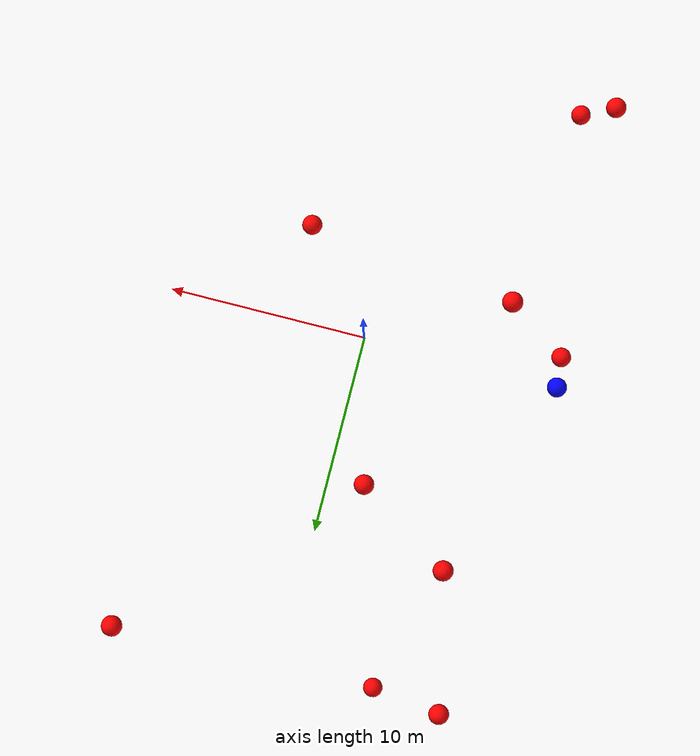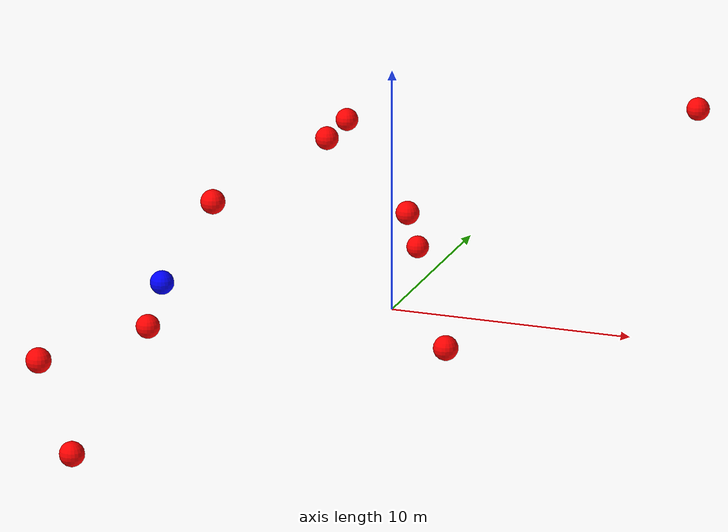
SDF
<?xml version="1.0" ?>
<sdf version="1.8">
    <world name="3d_world">
        <physics name="1ms" type="ode">
            <max_step_size>0.001</max_step_size>
            <real_time_factor>1.0</real_time_factor>
            <real_time_update_rate>1000.0</real_time_update_rate>
        </physics>
        <gravity>0 0 0</gravity>

        <plugin
            filename="gz-sim-physics-system"
            name="gz::sim::v8::systems::Physics">
        </plugin>
        <plugin
            filename="libignition-gazebo-user-commands-system.so"
            name="ignition::gazebo::systems::UserCommands">
        </plugin>
        <plugin
            filename="gz-sim-scene-broadcaster-system"
            name="gz::sim::systems::SceneBroadcaster">
        </plugin>
        <plugin
            filename="gz-sim-sensors-system"
            name="gz::sim::systems::Sensors">
            <render_engine>ogre2</render_engine>
        </plugin>

        <light type="directional" name="sun">
            <cast_shadows>true</cast_shadows>
            <pose>0 0 10 0 0 0</pose>
            <diffuse>0.8 0.8 0.8 1</diffuse>
            <specular>0.2 0.2 0.2 1</specular>
            <attenuation>
                <range>1000</range>
                <constant>0.9</constant>
                <linear>0.01</linear>
                <quadratic>0.001</quadratic>
            </attenuation>
            <direction>-0.5 0.1 -0.9</direction>
        </light>

        <!-- AGENTE -->
        <model name='agente' canonical_link='chassis'>
            <pose relative_to='world'>-10.0 0 0.0 0 0 0</pose>
            <link name='chassis'>
                <pose relative_to='__model__'>0.0 0 0.0 0 0 0</pose>
                <inertial>
                    <mass>1.14395</mass>
                    <inertia>
                        <ixx>0.095329</ixx>
                        <ixy>0</ixy>
                        <ixz>0</ixz>
                        <iyy>0.381317</iyy>
                        <iyz>0</iyz>
                        <izz>0.476646</izz>
                    </inertia>
                </inertial>
                <visual name='visual'>
                    <geometry>
                        <sphere>
                            <radius>0.5</radius>
                        </sphere>
                    </geometry>
                    <material>
                        <ambient>0.0 0.0 1.0 1</ambient>
                        <diffuse>0.0 0.0 1.0 1</diffuse>
                        <specular>0.0 0.0 1.0 1</specular>
                    </material>
                </visual>
                <collision name='collision'>
                    <geometry>
                        <sphere>
                            <radius>0.5</radius>
                        </sphere>
                    </geometry>
                </collision>
                <enable_gravity>false</enable_gravity>
            </link>

            <link name='lidar_link'>
                <pose relative_to='chassis'>0.0 0 0.1 0 0 0</pose>
                <inertial>
                    <mass>0.1</mass>
                    <inertia>
                        <ixx>0.000166667</ixx>
                        <iyy>0.000166667</iyy>
                        <izz>0.000166667</izz>
                    </inertia>
                </inertial>
                <collision name='collision'>
                    <geometry>
                        <cylinder>
                            <radius>0.05</radius>
                            <length>0.1</length>
                        </cylinder>
                    </geometry>
                </collision>
                <visual name='visual'>
                    <geometry>
                        <cylinder>
                            <radius>0.05</radius>
                            <length>0.1</length>
                        </cylinder>
                    </geometry>
                    <material>
                        <ambient>0.0 1.0 0.0 1</ambient>
                        <diffuse>0.0 1.0 0.0 1</diffuse>
                        <specular>0.0 1.0 0.0 1</specular>
                    </material>
                </visual>
                <sensor name="lidar" type="gpu_lidar">
                    <topic>scan</topic>
                    <update_rate>10</update_rate>
                    <lidar>
                        <scan>
                            <horizontal>
                                <samples>5000</samples>
                                <resolution>1</resolution>
                                <min_angle>-3.14159</min_angle>
                                <max_angle>3.14159</max_angle>
                            </horizontal>
                        </scan>
                        <range>
                            <min>0.1</min>
                            <max>10.0</max>
                            <resolution>0.01</resolution>
                        </range>
                    </lidar>
                    <visualize>true</visualize>
                    <always_on>true</always_on>
                    <update_rate>10</update_rate>
                    <pose_frame>lidar</pose_frame>
                </sensor>
                <enable_gravity>false</enable_gravity>
            </link>

            <joint name="lidar_joint" type="fixed">
                <parent>chassis</parent>
                <child>lidar_link</child>
            </joint>

            <plugin
                filename="ignition-gazebo-joint-state-publisher-system"
                name="ignition::gazebo::systems::JointStatePublisher">
            </plugin>
            <plugin
                filename="ignition-gazebo-odometry-publisher-system"
                name="ignition::gazebo::systems::OdometryPublisher">
                <dimensions>3</dimensions>
            </plugin>
            <plugin
                filename="ignition-gazebo-velocity-control-system"
                name="ignition::gazebo::systems::VelocityControl">
                <initial_linear>0.0 0 0</initial_linear>
                <initial_angular>0 0 0.0</initial_angular>
            </plugin>
            <plugin
                filename="libignition-gazebo-pose-publisher-system.so"
                name="ignition::gazebo::systems::PosePublisher">
                <topic>/agente/pose</topic>
                <frame_id>agente</frame_id>
                <update_rate>30</update_rate>
            </plugin>
        </model>

        <!-- OBSTACLE 1 -->
        <model name='obstacle_1' canonical_link='obstacle'>
            <static>false</static>
            <pose relative_to='world'>-8.08 16.98 2.30 0 0 0</pose>
            <link name='obstacle'>
                <pose relative_to='__model__'>0.0 0 0.0 0 0 0</pose>
                <visual name='visual'>
                    <geometry>
                        <sphere>
                            <radius>0.50</radius>
                        </sphere>
                    </geometry>
                    <material>
                        <ambient>1.0 0.0 0.0 1</ambient>
                        <diffuse>1.0 0.0 0.0 1</diffuse>
                        <specular>1.0 0.0 0.0 1</specular>
                    </material>
                </visual>
                <collision name='collision'>
                    <geometry>
                        <sphere>
                            <radius>0.50</radius>
                        </sphere>
                    </geometry>
                </collision>
                <enable_gravity>false</enable_gravity>
            </link>

            <plugin
                filename="ignition-gazebo-velocity-control-system"
                name="ignition::gazebo::systems::VelocityControl">
                <initial_linear>0.69 -1.86 -0.25</initial_linear>
                <initial_angular>0 0 0</initial_angular>
            </plugin>

            <plugin
                filename="ignition-gazebo-odometry-publisher-system"
                name="ignition::gazebo::systems::OdometryPublisher">
                <dimensions>3</dimensions>
            </plugin>
        </model>

        <!-- OBSTACLE 2 -->
        <model name='obstacle_2' canonical_link='obstacle'>
            <static>false</static>
            <pose relative_to='world'>-9.32 -14.11 1.51 0 0 0</pose>
            <link name='obstacle'>
                <pose relative_to='__model__'>0.0 0 0.0 0 0 0</pose>
                <visual name='visual'>
                    <geometry>
                        <sphere>
                            <radius>0.50</radius>
                        </sphere>
                    </geometry>
                    <material>
                        <ambient>1.0 0.0 0.0 1</ambient>
                        <diffuse>1.0 0.0 0.0 1</diffuse>
                        <specular>1.0 0.0 0.0 1</specular>
                    </material>
                </visual>
                <collision name='collision'>
                    <geometry>
                        <sphere>
                            <radius>0.50</radius>
                        </sphere>
                    </geometry>
                </collision>
                <enable_gravity>false</enable_gravity>
            </link>

            <plugin
                filename="ignition-gazebo-velocity-control-system"
                name="ignition::gazebo::systems::VelocityControl">
                <initial_linear>1.40 1.42 -0.15</initial_linear>
                <initial_angular>0 0 0</initial_angular>
            </plugin>

            <plugin
                filename="ignition-gazebo-odometry-publisher-system"
                name="ignition::gazebo::systems::OdometryPublisher">
                <dimensions>3</dimensions>
            </plugin>
        </model>

        <!-- OBSTACLE 3 -->
        <model name='obstacle_3' canonical_link='obstacle'>
            <static>false</static>
            <pose relative_to='world'>3.93 -4.85 0.46 0 0 0</pose>
            <link name='obstacle'>
                <pose relative_to='__model__'>0.0 0 0.0 0 0 0</pose>
                <visual name='visual'>
                    <geometry>
                        <sphere>
                            <radius>0.50</radius>
                        </sphere>
                    </geometry>
                    <material>
                        <ambient>1.0 0.0 0.0 1</ambient>
                        <diffuse>1.0 0.0 0.0 1</diffuse>
                        <specular>1.0 0.0 0.0 1</specular>
                    </material>
                </visual>
                <collision name='collision'>
                    <geometry>
                        <sphere>
                            <radius>0.50</radius>
                        </sphere>
                    </geometry>
                </collision>
                <enable_gravity>false</enable_gravity>
            </link>

            <plugin
                filename="ignition-gazebo-velocity-control-system"
                name="ignition::gazebo::systems::VelocityControl">
                <initial_linear>0.24 0.79 -0.07</initial_linear>
                <initial_angular>0 0 0</initial_angular>
            </plugin>

            <plugin
                filename="ignition-gazebo-odometry-publisher-system"
                name="ignition::gazebo::systems::OdometryPublisher">
                <dimensions>3</dimensions>
            </plugin>
        </model>

        <!-- OBSTACLE 4 -->
        <model name='obstacle_4' canonical_link='obstacle'>
            <static>false</static>
            <pose relative_to='world'>-6.51 -3.02 4.78 0 0 0</pose>
            <link name='obstacle'>
                <pose relative_to='__model__'>0.0 0 0.0 0 0 0</pose>
                <visual name='visual'>
                    <geometry>
                        <sphere>
                            <radius>0.50</radius>
                        </sphere>
                    </geometry>
                    <material>
                        <ambient>1.0 0.0 0.0 1</ambient>
                        <diffuse>1.0 0.0 0.0 1</diffuse>
                        <specular>1.0 0.0 0.0 1</specular>
                    </material>
                </visual>
                <collision name='collision'>
                    <geometry>
                        <sphere>
                            <radius>0.50</radius>
                        </sphere>
                    </geometry>
                </collision>
                <enable_gravity>false</enable_gravity>
            </link>

            <plugin
                filename="ignition-gazebo-velocity-control-system"
                name="ignition::gazebo::systems::VelocityControl">
                <initial_linear>1.52 0.70 -1.10</initial_linear>
                <initial_angular>0 0 0</initial_angular>
            </plugin>

            <plugin
                filename="ignition-gazebo-odometry-publisher-system"
                name="ignition::gazebo::systems::OdometryPublisher">
                <dimensions>3</dimensions>
            </plugin>
        </model>

        <!-- OBSTACLE 5 -->
        <model name='obstacle_5' canonical_link='obstacle'>
            <static>false</static>
            <pose relative_to='world'>-6.51 10.16 3.59 0 0 0</pose>
            <link name='obstacle'>
                <pose relative_to='__model__'>0.0 0 0.0 0 0 0</pose>
                <visual name='visual'>
                    <geometry>
                        <sphere>
                            <radius>0.50</radius>
                        </sphere>
                    </geometry>
                    <material>
                        <ambient>1.0 0.0 0.0 1</ambient>
                        <diffuse>1.0 0.0 0.0 1</diffuse>
                        <specular>1.0 0.0 0.0 1</specular>
                    </material>
                </visual>
                <collision name='collision'>
                    <geometry>
                        <sphere>
                            <radius>0.50</radius>
                        </sphere>
                    </geometry>
                </collision>
                <enable_gravity>false</enable_gravity>
            </link>

            <plugin
                filename="ignition-gazebo-velocity-control-system"
                name="ignition::gazebo::systems::VelocityControl">
                <initial_linear>0.98 -1.64 -0.58</initial_linear>
                <initial_angular>0 0 0</initial_angular>
            </plugin>

            <plugin
                filename="ignition-gazebo-odometry-publisher-system"
                name="ignition::gazebo::systems::OdometryPublisher">
                <dimensions>3</dimensions>
            </plugin>
        </model>

        <!-- OBSTACLE 6 -->
        <model name='obstacle_6' canonical_link='obstacle'>
            <static>false</static>
            <pose relative_to='world'>-7.97 -14.23 -2.09 0 0 0</pose>
            <link name='obstacle'>
                <pose relative_to='__model__'>0.0 0 0.0 0 0 0</pose>
                <visual name='visual'>
                    <geometry>
                        <sphere>
                            <radius>0.50</radius>
                        </sphere>
                    </geometry>
                    <material>
                        <ambient>1.0 0.0 0.0 1</ambient>
                        <diffuse>1.0 0.0 0.0 1</diffuse>
                        <specular>1.0 0.0 0.0 1</specular>
                    </material>
                </visual>
                <collision name='collision'>
                    <geometry>
                        <sphere>
                            <radius>0.50</radius>
                        </sphere>
                    </geometry>
                </collision>
                <enable_gravity>false</enable_gravity>
            </link>

            <plugin
                filename="ignition-gazebo-velocity-control-system"
                name="ignition::gazebo::systems::VelocityControl">
                <initial_linear>1.17 1.60 0.23</initial_linear>
                <initial_angular>0 0 0</initial_angular>
            </plugin>

            <plugin
                filename="ignition-gazebo-odometry-publisher-system"
                name="ignition::gazebo::systems::OdometryPublisher">
                <dimensions>3</dimensions>
            </plugin>
        </model>

        <!-- OBSTACLE 7 -->
        <model name='obstacle_7' canonical_link='obstacle'>
            <static>false</static>
            <pose relative_to='world'>-4.86 17.23 -3.33 0 0 0</pose>
            <link name='obstacle'>
                <pose relative_to='__model__'>0.0 0 0.0 0 0 0</pose>
                <visual name='visual'>
                    <geometry>
                        <sphere>
                            <radius>0.50</radius>
                        </sphere>
                    </geometry>
                    <material>
                        <ambient>1.0 0.0 0.0 1</ambient>
                        <diffuse>1.0 0.0 0.0 1</diffuse>
                        <specular>1.0 0.0 0.0 1</specular>
                    </material>
                </visual>
                <collision name='collision'>
                    <geometry>
                        <sphere>
                            <radius>0.50</radius>
                        </sphere>
                    </geometry>
                </collision>
                <enable_gravity>false</enable_gravity>
            </link>

            <plugin
                filename="ignition-gazebo-velocity-control-system"
                name="ignition::gazebo::systems::VelocityControl">
                <initial_linear>0.66 -1.85 0.36</initial_linear>
                <initial_angular>0 0 0</initial_angular>
            </plugin>

            <plugin
                filename="ignition-gazebo-odometry-publisher-system"
                name="ignition::gazebo::systems::OdometryPublisher">
                <dimensions>3</dimensions>
            </plugin>
        </model>

        <!-- OBSTACLE 8 -->
        <model name='obstacle_8' canonical_link='obstacle'>
            <static>false</static>
            <pose relative_to='world'>8.04 16.49 4.54 0 0 0</pose>
            <link name='obstacle'>
                <pose relative_to='__model__'>0.0 0 0.0 0 0 0</pose>
                <visual name='visual'>
                    <geometry>
                        <sphere>
                            <radius>0.50</radius>
                        </sphere>
                    </geometry>
                    <material>
                        <ambient>1.0 0.0 0.0 1</ambient>
                        <diffuse>1.0 0.0 0.0 1</diffuse>
                        <specular>1.0 0.0 0.0 1</specular>
                    </material>
                </visual>
                <collision name='collision'>
                    <geometry>
                        <sphere>
                            <radius>0.50</radius>
                        </sphere>
                    </geometry>
                </collision>
                <enable_gravity>false</enable_gravity>
            </link>

            <plugin
                filename="ignition-gazebo-velocity-control-system"
                name="ignition::gazebo::systems::VelocityControl">
                <initial_linear>-1.15 -1.58 -0.43</initial_linear>
                <initial_angular>0 0 0</initial_angular>
            </plugin>

            <plugin
                filename="ignition-gazebo-odometry-publisher-system"
                name="ignition::gazebo::systems::OdometryPublisher">
                <dimensions>3</dimensions>
            </plugin>
        </model>

        <!-- OBSTACLE 9 -->
        <model name='obstacle_9' canonical_link='obstacle'>
            <static>false</static>
            <pose relative_to='world'>-9.97 -1.66 -1.35 0 0 0</pose>
            <link name='obstacle'>
                <pose relative_to='__model__'>0.0 0 0.0 0 0 0</pose>
                <visual name='visual'>
                    <geometry>
                        <sphere>
                            <radius>0.50</radius>
                        </sphere>
                    </geometry>
                    <material>
                        <ambient>1.0 0.0 0.0 1</ambient>
                        <diffuse>1.0 0.0 0.0 1</diffuse>
                        <specular>1.0 0.0 0.0 1</specular>
                    </material>
                </visual>
                <collision name='collision'>
                    <geometry>
                        <sphere>
                            <radius>0.50</radius>
                        </sphere>
                    </geometry>
                </collision>
                <enable_gravity>false</enable_gravity>
            </link>

            <plugin
                filename="ignition-gazebo-velocity-control-system"
                name="ignition::gazebo::systems::VelocityControl">
                <initial_linear>1.96 0.31 0.26</initial_linear>
                <initial_angular>0 0 0</initial_angular>
            </plugin>

            <plugin
                filename="ignition-gazebo-odometry-publisher-system"
                name="ignition::gazebo::systems::OdometryPublisher">
                <dimensions>3</dimensions>
            </plugin>
        </model>

        <!-- OBSTACLE 10 -->
        <model name='obstacle_10' canonical_link='obstacle'>
            <static>false</static>
            <pose relative_to='world'>-1.82 7.12 1.70 0 0 0</pose>
            <link name='obstacle'>
                <pose relative_to='__model__'>0.0 0 0.0 0 0 0</pose>
                <visual name='visual'>
                    <geometry>
                        <sphere>
                            <radius>0.50</radius>
                        </sphere>
                    </geometry>
                    <material>
                        <ambient>1.0 0.0 0.0 1</ambient>
                        <diffuse>1.0 0.0 0.0 1</diffuse>
                        <specular>1.0 0.0 0.0 1</specular>
                    </material>
                </visual>
                <collision name='collision'>
                    <geometry>
                        <sphere>
                            <radius>0.50</radius>
                        </sphere>
                    </geometry>
                </collision>
                <enable_gravity>false</enable_gravity>
            </link>

            <plugin
                filename="ignition-gazebo-velocity-control-system"
                name="ignition::gazebo::systems::VelocityControl">
                <initial_linear>-0.78 -1.79 -0.43</initial_linear>
                <initial_angular>0 0 0</initial_angular>
            </plugin>

            <plugin
                filename="ignition-gazebo-odometry-publisher-system"
                name="ignition::gazebo::systems::OdometryPublisher">
                <dimensions>3</dimensions>
            </plugin>
        </model>

    </world>
</sdf>
